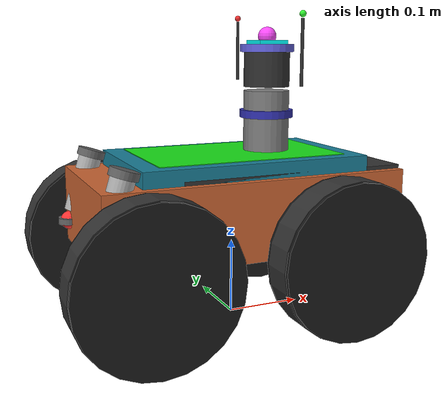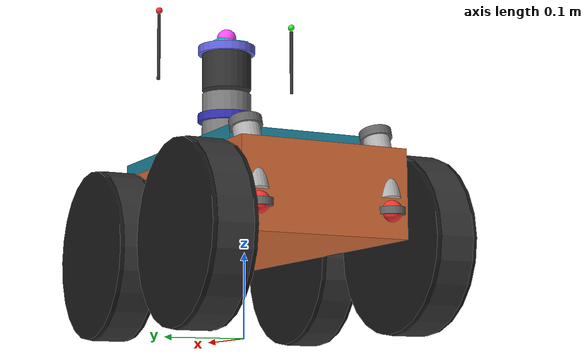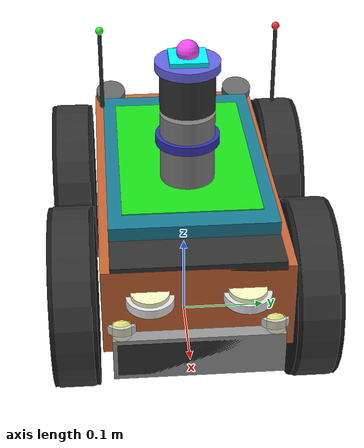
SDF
<?xml version='1.0'?>
<sdf version='1.4'>
  <model name="enhanced_robot">
    <static>false</static>

    <!-- Main Chassis -->
    <link name='chassis'>
      <pose>0 0 0.15 0 0 0</pose>
      <inertial>
        <mass>1.5</mass>
        <inertia>
          <ixx>0.1</ixx>
          <ixy>0</ixy>
          <ixz>0</ixz>
          <iyy>0.1</iyy>
          <iyz>0</iyz>
          <izz>0.1</izz>
        </inertia>
      </inertial>

      <collision name='collision'>
        <geometry>
          <box>
            <size>0.4 0.2 0.1</size>
          </box>
        </geometry>
      </collision>

      <visual name='visual'>
        <geometry>
          <box>
            <size>0.4 0.2 0.1</size>
          </box>
        </geometry>
        <material>
          <ambient>0.7 0.3 0.1 1</ambient>
          <diffuse>0.8 0.4 0.2 1</diffuse>
          <specular>0.2 0.2 0.2 1</specular>
        </material>
      </visual>

      <!-- Add some texture to the chassis -->
      <visual name='chassis_details'>
        <pose>0.05 0 0.05 0 0 0</pose>
        <geometry>
          <box>
            <size>0.3 0.18 0.01</size>
          </box>
        </geometry>
        <material>
          <ambient>0.1 0.1 0.1 1</ambient>
          <diffuse>0.2 0.2 0.2 1</diffuse>
          <specular>0.3 0.3 0.3 1</specular>
        </material>
      </visual>
    </link>

    <!-- Upper Deck/Electronics Platform -->
    <link name='upper_deck'>
      <pose>0 0 0.21 0 0 0</pose>
      <inertial>
        <mass>0.3</mass>
        <inertia>
          <ixx>0.01</ixx>
          <ixy>0</ixy>
          <ixz>0</ixz>
          <iyy>0.01</iyy>
          <iyz>0</iyz>
          <izz>0.01</izz>
        </inertia>
      </inertial>

      <collision name='upper_deck_collision'>
        <geometry>
          <box>
            <size>0.3 0.18 0.02</size>
          </box>
        </geometry>
      </collision>

      <visual name='upper_deck_visual'>
        <geometry>
          <box>
            <size>0.3 0.18 0.02</size>
          </box>
        </geometry>
        <material>
          <ambient>0.05 0.3 0.4 1</ambient>
          <diffuse>0.1 0.5 0.6 1</diffuse>
          <specular>0.1 0.1 0.1 1</specular>
        </material>
      </visual>

      <!-- Add some circuit patterns on the deck -->
      <visual name='circuit_pattern'>
        <pose>0 0 0.011 0 0 0</pose>
        <geometry>
          <box>
            <size>0.25 0.15 0.001</size>
          </box>
        </geometry>
        <material>
          <ambient>0.1 0.8 0.1 1</ambient>
          <diffuse>0.1 0.9 0.1 1</diffuse>
          <emissive>0.05 0.2 0.05 1</emissive>
        </material>
      </visual>
    </link>

    <!-- Rear Left Wheel - More Realistic -->
    <link name="rear_left_wheel">
      <pose>0.1 0.13 0.1 0 1.5707 1.5707</pose>
      <inertial>
        <mass>0.3</mass>
        <inertia>
          <ixx>0.001</ixx>
          <ixy>0</ixy>
          <ixz>0</ixz>
          <iyy>0.001</iyy>
          <iyz>0</iyz>
          <izz>0.001</izz>
        </inertia>
      </inertial>

      <collision name="collision">
        <geometry>
          <cylinder>
            <radius>0.1</radius>
            <length>0.05</length>
          </cylinder>
        </geometry>
        <surface>
          <friction>
            <ode>
              <mu>100</mu>
              <mu2>50</mu2>
            </ode>
          </friction>
        </surface>
      </collision>

      <visual name="tire">
        <geometry>
          <cylinder>
            <radius>0.1</radius>
            <length>0.05</length>
          </cylinder>
        </geometry>
        <material>
          <ambient>0.1 0.1 0.1 1</ambient>
          <diffuse>0.1 0.1 0.1 1</diffuse>
          <specular>0.1 0.1 0.1 1</specular>
        </material>
      </visual>

      <!-- Wheel rim -->
      <visual name="rim">
        <pose>0 0 0 0 0 0</pose>
        <geometry>
          <cylinder>
            <radius>0.06</radius>
            <length>0.04</length>
          </cylinder>
        </geometry>
        <material>
          <ambient>0.7 0.7 0.7 1</ambient>
          <diffuse>0.8 0.8 0.8 1</diffuse>
          <specular>0.9 0.9 0.9 1</specular>
          <emissive>0.1 0.1 0.1 1</emissive>
        </material>
      </visual>

      <!-- Wheel spokes -->
      <visual name="spokes1">
        <pose>0 0 0 0 1.5707 0</pose>
        <geometry>
          <box>
            <size>0.02 0.12 0.02</size>
          </box>
        </geometry>
        <material>
          <ambient>0.7 0.7 0.7 1</ambient>
          <diffuse>0.8 0.8 0.8 1</diffuse>
        </material>
      </visual>

      <visual name="spokes2">
        <pose>0 0 0 0 1.5707 1.5707</pose>
        <geometry>
          <box>
            <size>0.02 0.12 0.02</size>
          </box>
        </geometry>
        <material>
          <ambient>0.7 0.7 0.7 1</ambient>
          <diffuse>0.8 0.8 0.8 1</diffuse>
        </material>
      </visual>

      <!-- Tire pattern -->
      <visual name="tread">
        <pose>0 0 0 0 0 0</pose>
        <geometry>
          <cylinder>
            <radius>0.101</radius>
            <length>0.04</length>
          </cylinder>
        </geometry>
        <material>
          <ambient>0.1 0.1 0.1 1</ambient>
          <diffuse>0.2 0.2 0.2 1</diffuse>
          <emissive>0 0 0 1</emissive>
        </material>
      </visual>
    </link>

    <!-- Rear Right Wheel - More Realistic -->
    <link name="rear_right_wheel">
      <pose>0.1 -0.13 0.1 0 1.5707 1.5707</pose>
      <inertial>
        <mass>0.3</mass>
        <inertia>
          <ixx>0.001</ixx>
          <ixy>0</ixy>
          <ixz>0</ixz>
          <iyy>0.001</iyy>
          <iyz>0</iyz>
          <izz>0.001</izz>
        </inertia>
      </inertial>

      <collision name="collision">
        <geometry>
          <cylinder>
            <radius>0.1</radius>
            <length>0.05</length>
          </cylinder>
        </geometry>
        <surface>
          <friction>
            <ode>
              <mu>100</mu>
              <mu2>50</mu2>
            </ode>
          </friction>
        </surface>
      </collision>

      <visual name="tire">
        <geometry>
          <cylinder>
            <radius>0.1</radius>
            <length>0.05</length>
          </cylinder>
        </geometry>
        <material>
          <ambient>0.1 0.1 0.1 1</ambient>
          <diffuse>0.1 0.1 0.1 1</diffuse>
          <specular>0.1 0.1 0.1 1</specular>
        </material>
      </visual>

      <!-- Wheel rim -->
      <visual name="rim">
        <pose>0 0 0 0 0 0</pose>
        <geometry>
          <cylinder>
            <radius>0.06</radius>
            <length>0.04</length>
          </cylinder>
        </geometry>
        <material>
          <ambient>0.7 0.7 0.7 1</ambient>
          <diffuse>0.8 0.8 0.8 1</diffuse>
          <specular>0.9 0.9 0.9 1</specular>
          <emissive>0.1 0.1 0.1 1</emissive>
        </material>
      </visual>

      <!-- Wheel spokes -->
      <visual name="spokes1">
        <pose>0 0 0 0 1.5707 0</pose>
        <geometry>
          <box>
            <size>0.02 0.12 0.02</size>
          </box>
        </geometry>
        <material>
          <ambient>0.7 0.7 0.7 1</ambient>
          <diffuse>0.8 0.8 0.8 1</diffuse>
        </material>
      </visual>

      <visual name="spokes2">
        <pose>0 0 0 0 1.5707 1.5707</pose>
        <geometry>
          <box>
            <size>0.02 0.12 0.02</size>
          </box>
        </geometry>
        <material>
          <ambient>0.7 0.7 0.7 1</ambient>
          <diffuse>0.8 0.8 0.8 1</diffuse>
        </material>
      </visual>

      <!-- Tire pattern -->
      <visual name="tread">
        <pose>0 0 0 0 0 0</pose>
        <geometry>
          <cylinder>
            <radius>0.101</radius>
            <length>0.04</length>
          </cylinder>
        </geometry>
        <material>
          <ambient>0.1 0.1 0.1 1</ambient>
          <diffuse>0.2 0.2 0.2 1</diffuse>
          <emissive>0 0 0 1</emissive>
        </material>
      </visual>
    </link>

    <!-- Front Left Wheel - More Realistic -->
    <link name="front_left_wheel">
      <pose>-0.15 0.13 0.1 0 1.5707 1.5707</pose>
      <inertial>
        <mass>0.3</mass>
        <inertia>
          <ixx>0.001</ixx>
          <ixy>0</ixy>
          <ixz>0</ixz>
          <iyy>0.001</iyy>
          <iyz>0</iyz>
          <izz>0.001</izz>
        </inertia>
      </inertial>

      <collision name="collision">
        <geometry>
          <cylinder>
            <radius>0.1</radius>
            <length>0.05</length>
          </cylinder>
        </geometry>
        <surface>
          <friction>
            <ode>
              <mu>100</mu>
              <mu2>50</mu2>
            </ode>
          </friction>
        </surface>
      </collision>

      <visual name="tire">
        <geometry>
          <cylinder>
            <radius>0.1</radius>
            <length>0.05</length>
          </cylinder>
        </geometry>
        <material>
          <ambient>0.1 0.1 0.1 1</ambient>
          <diffuse>0.1 0.1 0.1 1</diffuse>
          <specular>0.1 0.1 0.1 1</specular>
        </material>
      </visual>

      <!-- Wheel rim -->
      <visual name="rim">
        <pose>0 0 0 0 0 0</pose>
        <geometry>
          <cylinder>
            <radius>0.06</radius>
            <length>0.04</length>
          </cylinder>
        </geometry>
        <material>
          <ambient>0.7 0.7 0.7 1</ambient>
          <diffuse>0.8 0.8 0.8 1</diffuse>
          <specular>0.9 0.9 0.9 1</specular>
          <emissive>0.1 0.1 0.1 1</emissive>
        </material>
      </visual>

      <!-- Wheel spokes -->
      <visual name="spokes1">
        <pose>0 0 0 0 1.5707 0</pose>
        <geometry>
          <box>
            <size>0.02 0.12 0.02</size>
          </box>
        </geometry>
        <material>
          <ambient>0.7 0.7 0.7 1</ambient>
          <diffuse>0.8 0.8 0.8 1</diffuse>
        </material>
      </visual>

      <visual name="spokes2">
        <pose>0 0 0 0 1.5707 1.5707</pose>
        <geometry>
          <box>
            <size>0.02 0.12 0.02</size>
          </box>
        </geometry>
        <material>
          <ambient>0.7 0.7 0.7 1</ambient>
          <diffuse>0.8 0.8 0.8 1</diffuse>
        </material>
      </visual>

      <!-- Tire pattern -->
      <visual name="tread">
        <pose>0 0 0 0 0 0</pose>
        <geometry>
          <cylinder>
            <radius>0.101</radius>
            <length>0.04</length>
          </cylinder>
        </geometry>
        <material>
          <ambient>0.1 0.1 0.1 1</ambient>
          <diffuse>0.2 0.2 0.2 1</diffuse>
          <emissive>0 0 0 1</emissive>
        </material>
      </visual>
    </link>

    <!-- Front Right Wheel - More Realistic -->
    <link name="front_right_wheel">
      <pose>-0.15 -0.13 0.1 0 1.5707 1.5707</pose>
      <inertial>
        <mass>0.3</mass>
        <inertia>
          <ixx>0.001</ixx>
          <ixy>0</ixy>
          <ixz>0</ixz>
          <iyy>0.001</iyy>
          <iyz>0</iyz>
          <izz>0.001</izz>
        </inertia>
      </inertial>

      <collision name="collision">
        <geometry>
          <cylinder>
            <radius>0.1</radius>
            <length>0.05</length>
          </cylinder>
        </geometry>
        <surface>
          <friction>
            <ode>
              <mu>100</mu>
              <mu2>50</mu2>
            </ode>
          </friction>
        </surface>
      </collision>

      <visual name="tire">
        <geometry>
          <cylinder>
            <radius>0.1</radius>
            <length>0.05</length>
          </cylinder>
        </geometry>
        <material>
          <ambient>0.1 0.1 0.1 1</ambient>
          <diffuse>0.1 0.1 0.1 1</diffuse>
          <specular>0.1 0.1 0.1 1</specular>
        </material>
      </visual>

      <!-- Wheel rim -->
      <visual name="rim">
        <pose>0 0 0 0 0 0</pose>
        <geometry>
          <cylinder>
            <radius>0.06</radius>
            <length>0.04</length>
          </cylinder>
        </geometry>
        <material>
          <ambient>0.7 0.7 0.7 1</ambient>
          <diffuse>0.8 0.8 0.8 1</diffuse>
          <specular>0.9 0.9 0.9 1</specular>
          <emissive>0.1 0.1 0.1 1</emissive>
        </material>
      </visual>

      <!-- Wheel spokes -->
      <visual name="spokes1">
        <pose>0 0 0 0 1.5707 0</pose>
        <geometry>
          <box>
            <size>0.02 0.12 0.02</size>
          </box>
        </geometry>
        <material>
          <ambient>0.7 0.7 0.7 1</ambient>
          <diffuse>0.8 0.8 0.8 1</diffuse>
        </material>
      </visual>

      <visual name="spokes2">
        <pose>0 0 0 0 1.5707 1.5707</pose>
        <geometry>
          <box>
            <size>0.02 0.12 0.02</size>
          </box>
        </geometry>
        <material>
          <ambient>0.7 0.7 0.7 1</ambient>
          <diffuse>0.8 0.8 0.8 1</diffuse>
        </material>
      </visual>

      <!-- Tire pattern -->
      <visual name="tread">
        <pose>0 0 0 0 0 0</pose>
        <geometry>
          <cylinder>
            <radius>0.101</radius>
            <length>0.04</length>
          </cylinder>
        </geometry>
        <material>
          <ambient>0.1 0.1 0.1 1</ambient>
          <diffuse>0.2 0.2 0.2 1</diffuse>
          <emissive>0 0 0 1</emissive>
        </material>
      </visual>
    </link>

    <!-- Sensor Tower - Enhanced -->
    <link name="sensor_tower">
      <pose>0.05 0 0.25 0 0 0</pose>
      <inertial>
        <mass>0.1</mass>
        <inertia>
          <ixx>0.0005</ixx>
          <ixy>0</ixy>
          <ixz>0</ixz>
          <iyy>0.0005</iyy>
          <iyz>0</iyz>
          <izz>0.0005</izz>
        </inertia>
      </inertial>

      <collision name="sensor_collision">
        <geometry>
          <cylinder>
            <radius>0.03</radius>
            <length>0.1</length>
          </cylinder>
        </geometry>
      </collision>

      <visual name="sensor_visual">
        <geometry>
          <cylinder>
            <radius>0.03</radius>
            <length>0.1</length>
          </cylinder>
        </geometry>
        <material>
          <ambient>0.4 0.4 0.4 1</ambient>
          <diffuse>0.5 0.5 0.5 1</diffuse>
          <specular>0.6 0.6 0.6 1</specular>
        </material>
      </visual>

      <!-- Add some tech details -->
      <visual name="tower_details">
        <pose>0 0 0.02 0 0 0</pose>
        <geometry>
          <cylinder>
            <radius>0.035</radius>
            <length>0.01</length>
          </cylinder>
        </geometry>
        <material>
          <ambient>0.1 0.1 0.5 1</ambient>
          <diffuse>0.2 0.2 0.7 1</diffuse>
          <emissive>0.1 0.1 0.3 1</emissive>
        </material>
      </visual>

      <!-- LiDAR sensor -->
      <sensor name="lidar_sensor" type="ray">
        <pose>0 0 0.1 0 0 0</pose>
        <visualize>true</visualize>
        <update_rate>20</update_rate>
        <ray>
          <scan>
            <horizontal>
              <samples>360</samples>
              <resolution>1</resolution>
              <min_angle>-3.14</min_angle>
              <max_angle>3.14</max_angle>
            </horizontal>
          </scan>
          <range>
            <min>0.1</min>
            <max>10.0</max>
            <resolution>0.01</resolution>
          </range>
          <noise>
            <type>gaussian</type>
            <mean>0.0</mean>
            <stddev>0.01</stddev>
          </noise>
        </ray>

        <plugin name="gazebo_ros_laser_controller" filename="libgazebo_ros_laser.so">
          <topicName>/scan</topicName>
          <frameName>lidar_link</frameName>
        </plugin>
      </sensor>
    </link>

    <!-- Lidar Sensor - Enhanced -->
    <link name="lidar">
      <pose>0.05 0 0.33 0 0 0</pose>
      <inertial>
        <mass>0.1</mass>
        <inertia>
          <ixx>0.001</ixx>
          <ixy>0</ixy>
          <ixz>0</ixz>
          <iyy>0.001</iyy>
          <iyz>0</iyz>
          <izz>0.001</izz>
        </inertia>
      </inertial>

      <collision name="lidar_collision">
        <geometry>
          <cylinder>
            <radius>0.03</radius>
            <length>0.05</length>
          </cylinder>
        </geometry>
      </collision>

      <visual name="lidar_visual">
        <geometry>
          <cylinder>
            <radius>0.03</radius>
            <length>0.05</length>
          </cylinder>
        </geometry>
        <material>
          <ambient>0.1 0.1 0.1 1</ambient>
          <diffuse>0.2 0.2 0.2 1</diffuse>
          <specular>0.7 0.7 0.7 1</specular>
        </material>
      </visual>

      <!-- Add a spinning element to the lidar -->
      <visual name="lidar_spinner">
        <pose>0 0 0.025 0 0 0</pose>
        <geometry>
          <cylinder>
            <radius>0.035</radius>
            <length>0.01</length>
          </cylinder>
        </geometry>
        <material>
          <ambient>0.3 0.3 0.8 1</ambient>
          <diffuse>0.4 0.4 0.9 1</diffuse>
          <emissive>0.2 0.2 0.5 1</emissive>
        </material>
      </visual>
    </link>

    <!-- New: Add Exhaust Pipes on the back -->
    <link name="exhaust_pipe_left">
      <pose>-0.18 0.08 0.18 0 0.3 0</pose>
      <inertial>
        <mass>0.05</mass>
        <inertia>
          <ixx>0.0001</ixx>
          <ixy>0</ixy>
          <ixz>0</ixz>
          <iyy>0.0001</iyy>
          <iyz>0</iyz>
          <izz>0.0001</izz>
        </inertia>
      </inertial>

      <collision name="pipe_collision">
        <geometry>
          <cylinder>
            <radius>0.015</radius>
            <length>0.08</length>
          </cylinder>
        </geometry>
      </collision>

      <visual name="pipe_visual">
        <geometry>
          <cylinder>
            <radius>0.015</radius>
            <length>0.08</length>
          </cylinder>
        </geometry>
        <material>
          <ambient>0.5 0.5 0.5 1</ambient>
          <diffuse>0.7 0.7 0.7 1</diffuse>
          <specular>0.9 0.9 0.9 1</specular>
        </material>
      </visual>

      <!-- Pipe tip -->
      <visual name="pipe_tip">
        <pose>0 0 0.04 0 0 0</pose>
        <geometry>
          <cylinder>
            <radius>0.018</radius>
            <length>0.01</length>
          </cylinder>
        </geometry>
        <material>
          <ambient>0.3 0.3 0.3 1</ambient>
          <diffuse>0.4 0.4 0.4 1</diffuse>
          <specular>0.8 0.8 0.8 1</specular>
        </material>
      </visual>
    </link>

    <link name="exhaust_pipe_right">
      <pose>-0.18 -0.08 0.18 0 0.3 0</pose>
      <inertial>
        <mass>0.05</mass>
        <inertia>
          <ixx>0.0001</ixx>
          <ixy>0</ixy>
          <ixz>0</ixz>
          <iyy>0.0001</iyy>
          <iyz>0</iyz>
          <izz>0.0001</izz>
        </inertia>
      </inertial>

      <collision name="pipe_collision">
        <geometry>
          <cylinder>
            <radius>0.015</radius>
            <length>0.08</length>
          </cylinder>
        </geometry>
      </collision>

      <visual name="pipe_visual">
        <geometry>
          <cylinder>
            <radius>0.015</radius>
            <length>0.08</length>
          </cylinder>
        </geometry>
        <material>
          <ambient>0.5 0.5 0.5 1</ambient>
          <diffuse>0.7 0.7 0.7 1</diffuse>
          <specular>0.9 0.9 0.9 1</specular>
        </material>
      </visual>

      <!-- Pipe tip -->
      <visual name="pipe_tip">
        <pose>0 0 0.04 0 0 0</pose>
        <geometry>
          <cylinder>
            <radius>0.018</radius>
            <length>0.01</length>
          </cylinder>
        </geometry>
        <material>
          <ambient>0.3 0.3 0.3 1</ambient>
          <diffuse>0.4 0.4 0.4 1</diffuse>
          <specular>0.8 0.8 0.8 1</specular>
        </material>
      </visual>
    </link>

    <!-- Robot logo on top - Enhanced -->
    <link name="logo">
      <pose>0.05 0 0.36 0 0 0</pose>
      <visual name="logo_visual">
        <geometry>
          <box>
            <size>0.04 0.04 0.01</size>
          </box>
        </geometry>
        <material>
          <ambient>0 0.8 0.8 1</ambient>
          <diffuse>0 1 1 1</diffuse>
          <emissive>0 0.6 0.6 1</emissive>
        </material>
      </visual>

      <!-- Add a 3D logo element -->
      <visual name="logo_3d">
        <pose>0 0 0.01 0 0 0</pose>
        <geometry>
          <sphere>
            <radius>0.012</radius>
          </sphere>
        </geometry>
        <material>
          <ambient>0.8 0.2 0.8 1</ambient>
          <diffuse>1 0.3 1 1</diffuse>
          <emissive>0.5 0.1 0.5 1</emissive>
        </material>
      </visual>
    </link>

    <!-- Enhanced Front Lights -->
    <link name="front_light_left">
      <pose>0.19 0.08 0.13 0 0 0</pose>
      <visual name="light_visual">
        <geometry>
          <sphere>
            <radius>0.015</radius>
          </sphere>
        </geometry>
        <material>
          <ambient>1 1 0.5 1</ambient>
          <diffuse>1 1 0.5 1</diffuse>
          <emissive>1 1 0.5 1</emissive>
        </material>
      </visual>

      <!-- Light housing -->
      <visual name="light_housing">
        <pose>0 0 0 0 0 0</pose>
        <geometry>
          <cylinder>
            <radius>0.018</radius>
            <length>0.01</length>
          </cylinder>
        </geometry>
        <material>
          <ambient>0.7 0.7 0.7 1</ambient>
          <diffuse>0.8 0.8 0.8 1</diffuse>
          <specular>1 1 1 1</specular>
        </material>
      </visual>

      <!-- Light beam effect -->
      <visual name="light_beam">
        <pose>0.015 0 0 0 0 0</pose>
        <geometry>
          <cylinder>
            <radius>0.01</radius>
            <length>0.02</length>
          </cylinder>
        </geometry>
        <material>
          <ambient>1 1 0.7 0.3</ambient>
          <diffuse>1 1 0.7 0.3</diffuse>
          <emissive>1 1 0.7 0.3</emissive>
        </material>
      </visual>
    </link>

    <link name="front_light_right">
      <pose>0.19 -0.08 0.13 0 0 0</pose>
      <visual name="light_visual">
        <geometry>
          <sphere>
            <radius>0.015</radius>
          </sphere>
        </geometry>
        <material>
          <ambient>1 1 0.5 1</ambient>
          <diffuse>1 1 0.5 1</diffuse>
          <emissive>1 1 0.5 1</emissive>
        </material>
      </visual>

      <!-- Light housing -->
      <visual name="light_housing">
        <pose>0 0 0 0 0 0</pose>
        <geometry>
          <cylinder>
            <radius>0.018</radius>
            <length>0.01</length>
          </cylinder>
        </geometry>
        <material>
          <ambient>0.7 0.7 0.7 1</ambient>
          <diffuse>0.8 0.8 0.8 1</diffuse>
          <specular>1 1 1 1</specular>
        </material>
      </visual>

      <!-- Light beam effect -->
      <visual name="light_beam">
        <pose>0.015 0 0 0 0 0</pose>
        <geometry>
          <cylinder>
            <radius>0.01</radius>
            <length>0.02</length>
          </cylinder>
        </geometry>
        <material>
          <ambient>1 1 0.7 0.3</ambient>
          <diffuse>1 1 0.7 0.3</diffuse>
          <emissive>1 1 0.7 0.3</emissive>
        </material>
      </visual>
    </link>

    <!-- Add additional headlights -->
    <link name="main_headlight_left">
      <pose>0.2 0.05 0.17 0 0 0</pose>
      <visual name="headlight_visual">
        <geometry>
          <cylinder>
            <radius>0.02</radius>
            <length>0.01</length>
          </cylinder>
        </geometry>
        <material>
          <ambient>1 1 0.8 1</ambient>
          <diffuse>1 1 0.8 1</diffuse>
          <emissive>1 1 0.8 1</emissive>
        </material>
      </visual>

      <!-- Headlight casing -->
      <visual name="headlight_casing">
        <pose>0 0 -0.005 0 0 0</pose>
        <geometry>
          <cylinder>
            <radius>0.025</radius>
            <length>0.01</length>
          </cylinder>
        </geometry>
        <material>
          <ambient>0.8 0.8 0.8 1</ambient>
          <diffuse>0.9 0.9 0.9 1</diffuse>
          <specular>1 1 1 1</specular>
        </material>
      </visual>
    </link>

    <link name="main_headlight_right">
      <pose>0.2 -0.05 0.17 0 0 0</pose>
      <visual name="headlight_visual">
        <geometry>
          <cylinder>
            <radius>0.02</radius>
            <length>0.01</length>
          </cylinder>
        </geometry>
        <material>
          <ambient>1 1 0.8 1</ambient>
          <diffuse>1 1 0.8 1</diffuse>
          <emissive>1 1 0.8 1</emissive>
        </material>
      </visual>

      <!-- Headlight casing -->
      <visual name="headlight_casing">
        <pose>0 0 -0.005 0 0 0</pose>
        <geometry>
          <cylinder>
            <radius>0.025</radius>
            <length>0.01</length>
          </cylinder>
        </geometry>
        <material>
          <ambient>0.8 0.8 0.8 1</ambient>
          <diffuse>0.9 0.9 0.9 1</diffuse>
          <specular>1 1 1 1</specular>
        </material>
      </visual>
    </link>

    <!-- Add decorative bumper -->
    <link name="front_bumper">
      <pose>0.2 0 0.1 0 0 0</pose>
      <visual name="bumper_visual">
        <geometry>
          <box>
            <size>0.03 0.18 0.05</size>
          </box>
        </geometry>
        <material>
          <ambient>0.4 0.4 0.4 1</ambient>
          <diffuse>0.6 0.6 0.6 1</diffuse>
          <specular>0.8 0.8 0.8 1</specular>
        </material>
      </visual>

      <!-- Bumper detail -->
      <visual name="bumper_detail">
        <pose>0.01 0 0 0 0 0</pose>
        <geometry>
          <box>
            <size>0.01 0.17 0.04</size>
          </box>
        </geometry>
        <material>
          <ambient>0.1 0.1 0.1 1</ambient>
          <diffuse>0.2 0.2 0.2 1</diffuse>
        </material>
      </visual>
    </link>

    <!-- Add rear taillights -->
    <link name="taillight_left">
      <pose>-0.2 0.08 0.13 0 0 0</pose>
      <visual name="taillight_visual">
        <geometry>
          <sphere>
            <radius>0.012</radius>
          </sphere>
        </geometry>
        <material>
          <ambient>0.8 0.1 0.1 1</ambient>
          <diffuse>1 0.2 0.2 1</diffuse>
          <emissive>0.8 0.2 0.2 1</emissive>
        </material>
      </visual>

      <!-- Light housing -->
      <visual name="light_housing">
        <pose>0 0 0 0 0 0</pose>
        <geometry>
          <cylinder>
            <radius>0.015</radius>
            <length>0.008</length>
          </cylinder>
        </geometry>
        <material>
          <ambient>0.3 0.3 0.3 1</ambient>
          <diffuse>0.4 0.4 0.4 1</diffuse>
          <specular>0.7 0.7 0.7 1</specular>
        </material>
      </visual>
    </link>

    <link name="taillight_right">
      <pose>-0.2 -0.08 0.13 0 0 0</pose>
      <visual name="taillight_visual">
        <geometry>
          <sphere>
            <radius>0.012</radius>
          </sphere>
        </geometry>
        <material>
          <ambient>0.8 0.1 0.1 1</ambient>
          <diffuse>1 0.2 0.2 1</diffuse>
          <emissive>0.8 0.2 0.2 1</emissive>
        </material>
      </visual>

      <!-- Light housing -->
      <visual name="light_housing">
        <pose>0 0 0 0 0 0</pose>
        <geometry>
          <cylinder>
            <radius>0.015</radius>
            <length>0.008</length>
          </cylinder>
        </geometry>
        <material>
          <ambient>0.3 0.3 0.3 1</ambient>
          <diffuse>0.4 0.4 0.4 1</diffuse>
          <specular>0.7 0.7 0.7 1</specular>
        </material>
      </visual>
    </link>

    <!-- Add small antennas -->
    <link name="antenna_left">
      <pose>0.05 0.09 0.35 0 0 0</pose>
      <visual name="antenna_visual">
        <geometry>
          <cylinder>
            <radius>0.002</radius>
            <length>0.08</length>
          </cylinder>
        </geometry>
        <material>
          <ambient>0.1 0.1 0.1 1</ambient>
          <diffuse>0.2 0.2 0.2 1</diffuse>
        </material>
      </visual>

      <!-- Antenna tip -->
      <visual name="antenna_tip">
        <pose>0 0 0.045 0 0 0</pose>
        <geometry>
          <sphere>
            <radius>0.004</radius>
          </sphere>
        </geometry>
        <material>
          <ambient>0.9 0.1 0.1 1</ambient>
          <diffuse>1 0.2 0.2 1</diffuse>
          <emissive>0.5 0.1 0.1 1</emissive>
        </material>
      </visual>
    </link>

    <link name="antenna_right">
      <pose>0.05 -0.09 0.35 0 0 0</pose>
      <visual name="antenna_visual">
        <geometry>
          <cylinder>
            <radius>0.002</radius>
            <length>0.08</length>
          </cylinder>
        </geometry>
        <material>
          <ambient>0.1 0.1 0.1 1</ambient>
          <diffuse>0.2 0.2 0.2 1</diffuse>
        </material>
      </visual>

      <!-- Antenna tip -->
      <visual name="antenna_tip">
        <pose>0 0 0.045 0 0 0</pose>
        <geometry>
          <sphere>
            <radius>0.004</radius>
          </sphere>
        </geometry>
        <material>
          <ambient>0.1 0.9 0.1 1</ambient>
          <diffuse>0.2 1 0.2 1</diffuse>
          <emissive>0.1 0.5 0.1 1</emissive>
        </material>
      </visual>
    </link>

    <!-- JOINTS -->

    <!-- Rear Left Wheel Joint -->
    <joint type="revolute" name="rear_left_wheel_hinge">
      <pose>0 0 0 0 0 0</pose>
      <child>rear_left_wheel</child>
      <parent>chassis</parent>
      <axis>
        <xyz>0 1 0</xyz>
        <dynamics>
          <damping>0.1</damping>
          <friction>0.1</friction>
        </dynamics>
      </axis>
    </joint>

    <!-- Rear Right Wheel Joint -->
    <joint type="revolute" name="rear_right_wheel_hinge">
      <pose>0 0 0 0 0 0</pose>
      <child>rear_right_wheel</child>
      <parent>chassis</parent>
      <axis>
        <xyz>0 1 0</xyz>
        <dynamics>
          <damping>0.1</damping>
          <friction>0.1</friction>
        </dynamics>
      </axis>
    </joint>

    <!-- Front Left Wheel Joint -->
    <joint type="revolute" name="front_left_wheel_hinge">
      <pose>0 0 0 0 0 0</pose>
      <child>front_left_wheel</child>
      <parent>chassis</parent>
      <axis>
        <xyz>0 1 0</xyz>
        <dynamics>
          <damping>0.1</damping>
          <friction>0.1</friction>
        </dynamics>
      </axis>
    </joint>

    <!-- Front Right Wheel Joint -->
    <joint type="revolute" name="front_right_wheel_hinge">
      <pose>0 0 0 0 0 0</pose>
      <child>front_right_wheel</child>
      <parent>chassis</parent>
      <axis>
        <xyz>0 1 0</xyz>
        <dynamics>
          <damping>0.1</damping>
          <friction>0.1</friction>
        </dynamics>
      </axis>
    </joint>

    <!-- Upper Deck Joint -->
    <joint type="fixed" name="upper_deck_joint">
      <parent>chassis</parent>
      <child>upper_deck</child>
    </joint>

    <!-- Sensor Tower Joint -->
    <joint type="fixed" name="sensor_tower_joint">
      <parent>upper_deck</parent>
      <child>sensor_tower</child>
    </joint>

    <!-- Lidar Joint -->
    <joint type="fixed" name="lidar_joint">
      <parent>sensor_tower</parent>
      <child>lidar</child>
    </joint>

    <!-- Logo Joint -->
    <joint type="fixed" name="logo_joint">
      <parent>lidar</parent>
      <child>logo</child>
    </joint>

    <!-- Front Lights Joints -->
    <joint type="fixed" name="front_light_left_joint">
      <parent>chassis</parent>
      <child>front_light_left</child>
    </joint>

    <joint type="fixed" name="front_light_right_joint">
      <parent>chassis</parent>
      <child>front_light_right</child>
    </joint>

    <!-- Exhaust Pipes Joints -->
    <joint type="fixed" name="exhaust_pipe_left_joint">
      <parent>chassis</parent>
      <child>exhaust_pipe_left</child>
    </joint>

    <joint type="fixed" name="exhaust_pipe_right_joint">
      <parent>chassis</parent>
      <child>exhaust_pipe_right</child>
    </joint>

    <!-- Additional headlights joints -->
    <joint type="fixed" name="main_headlight_left_joint">
      <parent>chassis</parent>
      <child>main_headlight_left</child>
    </joint>

    <joint type="fixed" name="main_headlight_right_joint">
      <parent>chassis</parent>
      <child>main_headlight_right</child>
    </joint>

    <!-- Bumper joint -->
    <joint type="fixed" name="front_bumper_joint">
      <parent>chassis</parent>
      <child>front_bumper</child>
    </joint>

    <!-- Taillights joints -->
    <joint type="fixed" name="taillight_left_joint">
      <parent>chassis</parent>
      <child>taillight_left</child>
    </joint>

    <joint type="fixed" name="taillight_right_joint">
      <parent>chassis</parent>
      <child>taillight_right</child>
    </joint>

    <!-- Antenna joints -->
    <joint type="fixed" name="antenna_left_joint">
      <parent>upper_deck</parent>
      <child>antenna_left</child>
    </joint>

    <joint type="fixed" name="antenna_right_joint">
      <parent>upper_deck</parent>
      <child>antenna_right</child>
    </joint>

    <!-- Adding a differential drive plugin for 4 wheels -->
    <plugin name="four_wheel_drive_controller" filename="libgazebo_ros_diff_drive.so">
      <alwaysOn>true</alwaysOn>
      <updateRate>20</updateRate>
      <leftJoint>rear_left_wheel_hinge</leftJoint>
      <rightJoint>rear_right_wheel_hinge</rightJoint>
      <wheelSeparation>0.26</wheelSeparation>
      <wheelDiameter>0.2</wheelDiameter>
      <torque>20</torque>
      <commandTopic>cmd_vel</commandTopic>
      <odometryTopic>odom</odometryTopic>
      <odometryFrame>odom</odometryFrame>
      <robotBaseFrame>chassis</robotBaseFrame>
    </plugin>

    <!-- Optional: Additional controller for front wheels -->
    <plugin name="front_wheel_drive" filename="libgazebo_ros_diff_drive.so">
      <alwaysOn>true</alwaysOn>
      <updateRate>20</updateRate>
      <leftJoint>front_left_wheel_hinge</leftJoint>
      <rightJoint>front_right_wheel_hinge</rightJoint>
      <wheelSeparation>0.26</wheelSeparation>
      <wheelDiameter>0.2</wheelDiameter>
      <torque>20</torque>
      <commandTopic>front_cmd_vel</commandTopic>
      <odometryFrame>odom</odometryFrame>
      <robotBaseFrame>chassis</robotBaseFrame>
      <publishOdometry>false</publishOdometry>
    </plugin>
  </model>
</sdf>
